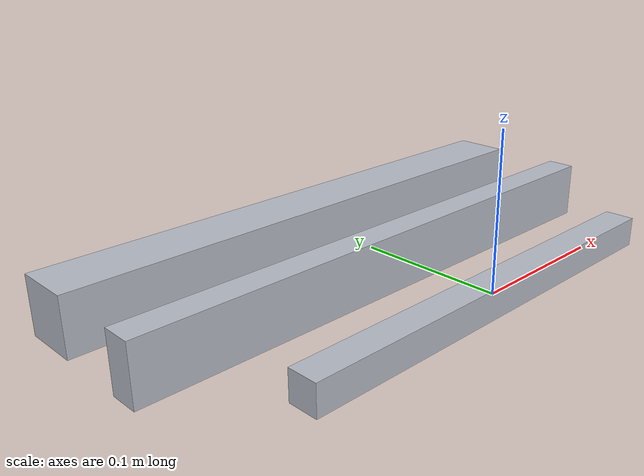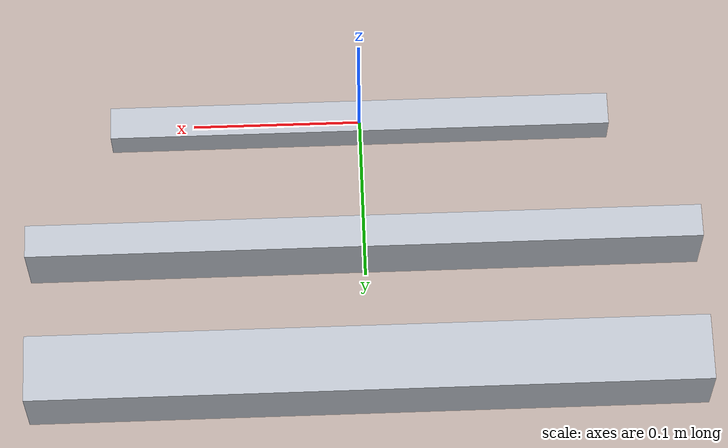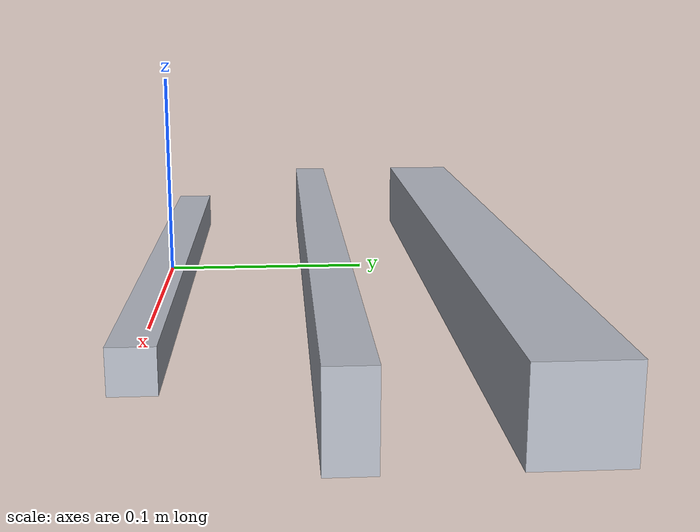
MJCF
<?xml version='1.0' encoding='utf-8'?>
<mujoco model="stock aluminum profile examples">
  <worldbody>
    <body name="profile_2020_example" pos="0 0 0">
      <geom name="profile_2020_geom" type="box" size="0.15 0.01 0.01" mass="0.135" rgba="0.72 0.74 0.78 1" />
    </body>
    <body name="profile_2040_example" pos="0 0.08 0">
      <geom name="profile_2040_geom" type="box" size="0.2 0.01 0.02" mass="0.328" rgba="0.72 0.74 0.78 1" />
    </body>
    <body name="profile_4040_example" pos="0 0.16 0">
      <geom name="profile_4040_geom" type="box" size="0.2 0.02 0.02" mass="0.6" rgba="0.72 0.74 0.78 1" />
    </body>
  </worldbody>
</mujoco>
